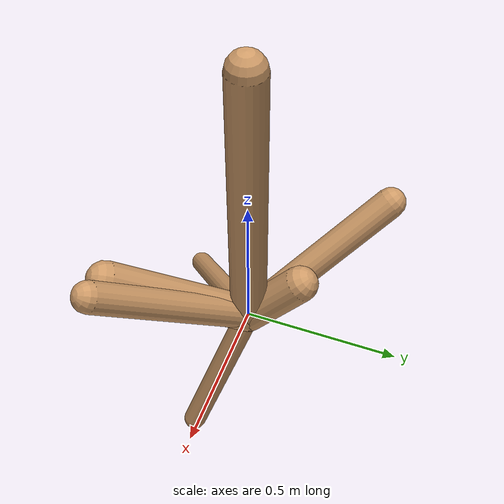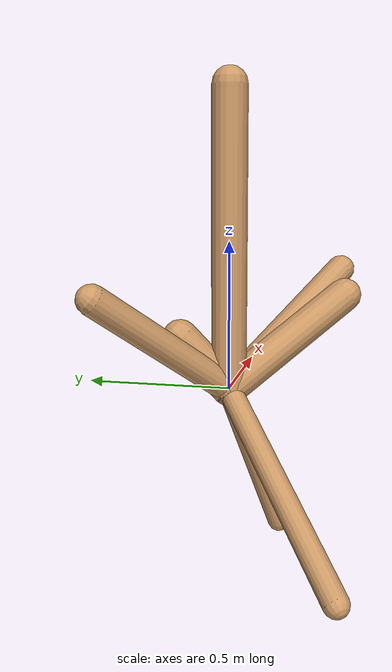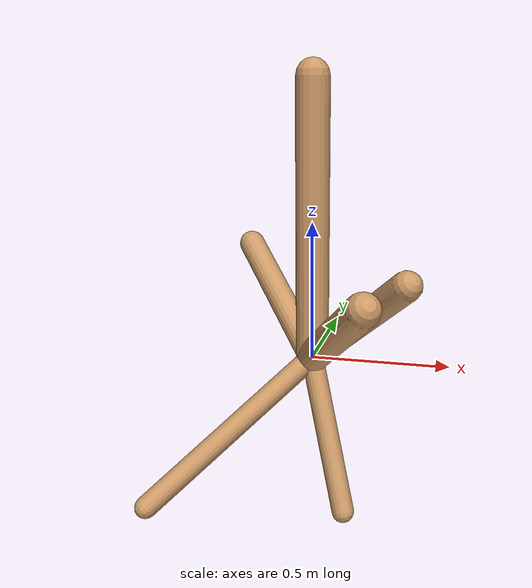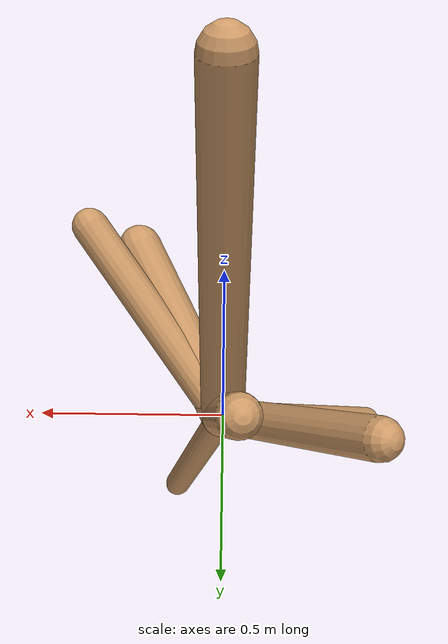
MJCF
<!--
                    joint_number: 6
                    -->
                    <mujoco model="randomrobot">
                        <compiler angle="degree" coordinate="global" inertiafromgeom="true"/>
                        <default>
                        <joint armature="0.01" damping=".1" limited="true"/>
                        <geom conaffinity="0" condim="3" contype="1" density="1000" friction="0.8 .1 .1" rgba="0.8 0.6 .4 1"/>
                        </default>
                        <option integrator="RK4" timestep="0.002"/>
                        <worldbody>
                    <body name='torso' pos='0.00 0.00 0.60'><geom fromto='0 0 0 0.00 0.00 1.00' name='torso_geom' size='0.06' type='capsule'/><inertial mass='0.3'/><body name='L0_D1' pos='0.00 0.00 0.22'><joint axis='1 0 0' name='L0_D1_joint' pos='0 0 0' range='53.42 93.32' type='hinge'/><geom fromto='0 0 0 0.24 -0.37 0.30' name='L0_D1_geom' size='0.06' type='capsule'/><inertial mass='0.3'/><body name='L1_D0' pos='0.19 -0.30 0.24'><joint axis='0 1 0' name='L1_D0_joint' pos='0 0 0' range='21.44 158.02' type='hinge'/><geom fromto='0 0 0 -0.51 -0.40 -0.46' name='L1_D0_geom' size='0.04' type='capsule'/><inertial mass='0.3'/></body><body name='L2_D0' pos='0.15 -0.24 0.19'><joint axis='0 0 1' name='L2_D0_joint' pos='0 0 0' range='98.36 138.75' type='hinge'/><geom fromto='0 0 0 0.37 -0.35 0.38' name='L2_D0_geom' size='0.05' type='capsule'/><inertial mass='0.3'/></body><body name='L3_D0' pos='0.05 -0.07 0.06'><joint axis='0 0 1' name='L3_D0_joint' pos='0 0 0' range='105.03 169.07' type='hinge'/><geom fromto='0 0 0 -0.04 0.16 0.18' name='L3_D0_geom' size='0.06' type='capsule'/><inertial mass='0.3'/></body></body><body name='L4_D1' pos='0.00 0.00 0.76'><joint axis='0 1 0' name='L4_D1_joint' pos='0 0 0' range='60.12 107.41' type='hinge'/><geom fromto='0 0 0 -0.33 0.36 0.34' name='L4_D1_geom' size='0.05' type='capsule'/><inertial mass='0.3'/><body name='L5_D0' pos='-0.03 0.03 0.03'><joint axis='0 0 1' name='L5_D0_joint' pos='0 0 0' range='50.63 121.57' type='hinge'/><geom fromto='0 0 0 0.15 -0.16 -0.53' name='L5_D0_geom' size='0.04' type='capsule'/><inertial mass='0.3'/></body></body></body>
                        </worldbody>
                    </mujoco>
